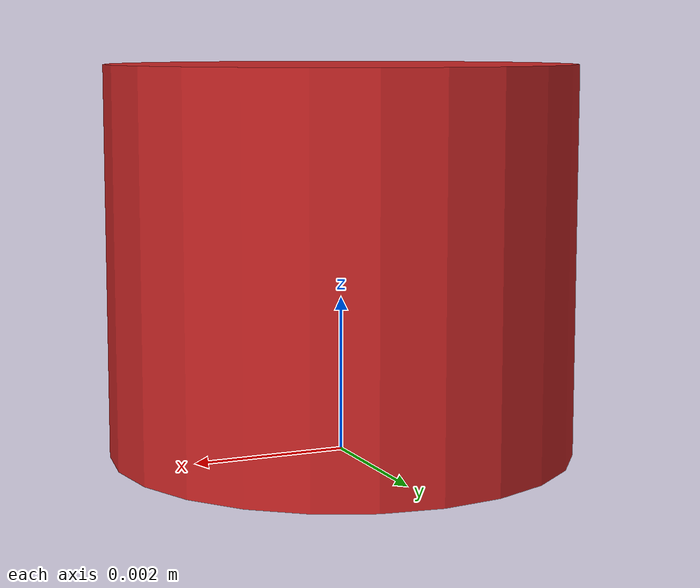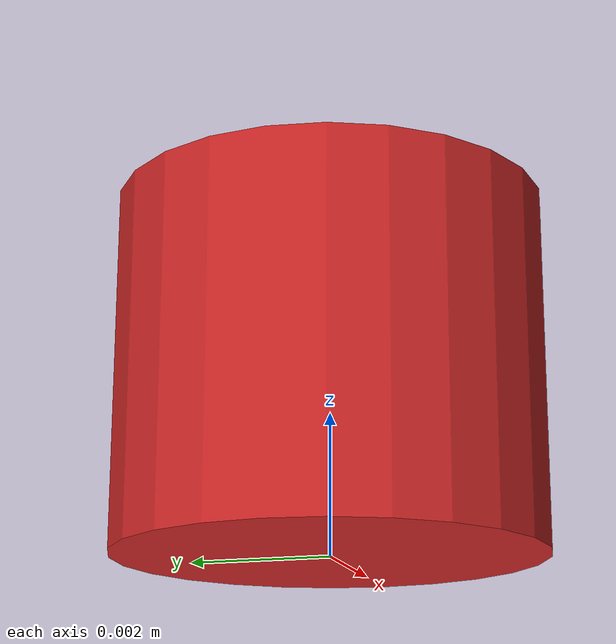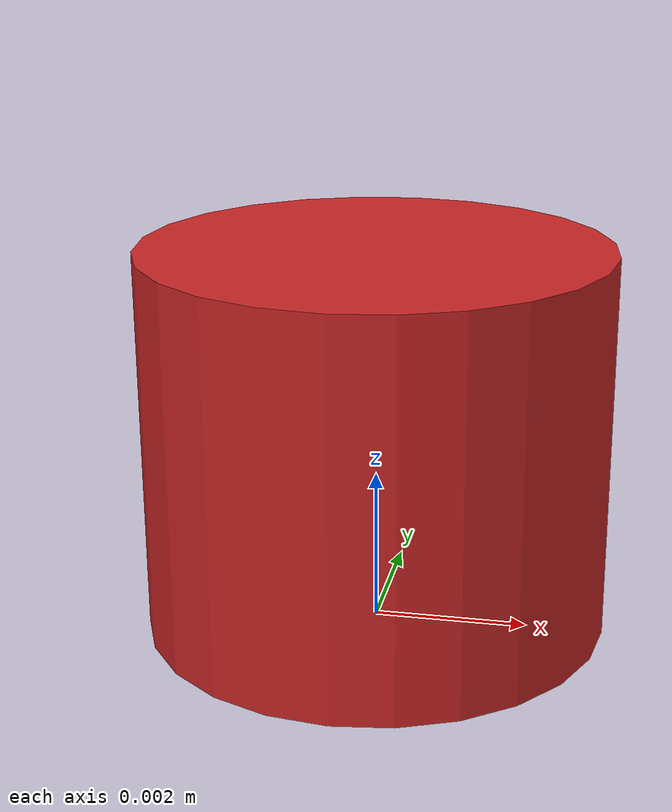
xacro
<?xml version="1.0"?>

<robot xmlns:xacro="http://www.ros.org/wiki/xacro" name="hand">

    <xacro:macro name="gazebo_red_link_color_block" params="link_name">
    <gazebo reference="${link_name}">
    <visual>
      <material>
	    <ambient>1.0 0.0 0.0 1.0</ambient>
	    <diffuse>0.56666695 0.56666695 0.56666695 1.0</diffuse>
	    <specular>0.6000003 0.6000003 0.6000003 1.0</specular>
      </material>
    </visual>
    </gazebo>
    </xacro:macro>

    <!-- link_ee -->
    <xacro:property name="length_ee" value="0.005" />
    <xacro:property name="radius_ee" value="0.003" />
    <xacro:property name="mass_ee" value="0.100" />

    <!-- link_ee -->
    <link name="link_ee">
        <xacro:cylinder_inertial_block mass="${mass_ee}" length="${length_ee}" radius="${radius_ee}"/>
        <visual>
            <origin xyz="0.0 0.0 ${length_ee/2.0}" rpy="0.0 0.0 0.0"/>
            <geometry>
                <cylinder radius="${radius_ee}" length="${length_ee}"/>
            </geometry>
            <material name="Red"/>
        </visual>

        <collision>
            <origin xyz="0.0 0.0 ${length_ee/2.0}" rpy="0.0 0.0 0.0"/>
            <geometry>
                <cylinder radius="${radius_ee}" length="${length_ee}"/>
            </geometry>>
        </collision>
    </link>
    <xacro:gazebo_red_link_color_block link_name="link_ee"/>

</robot>
